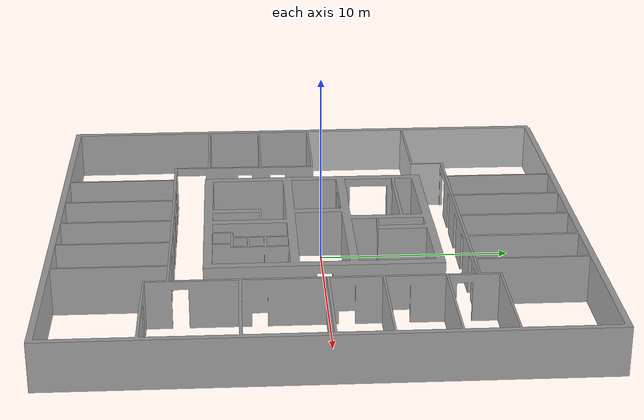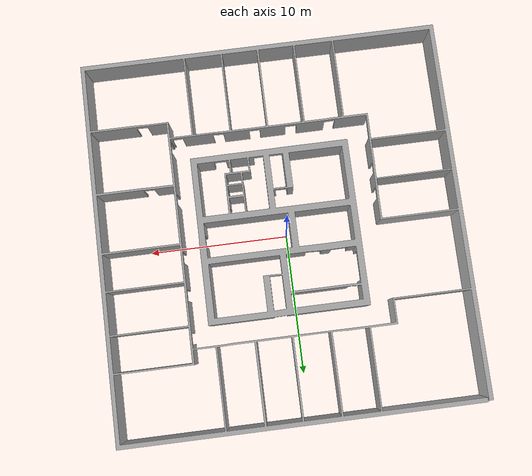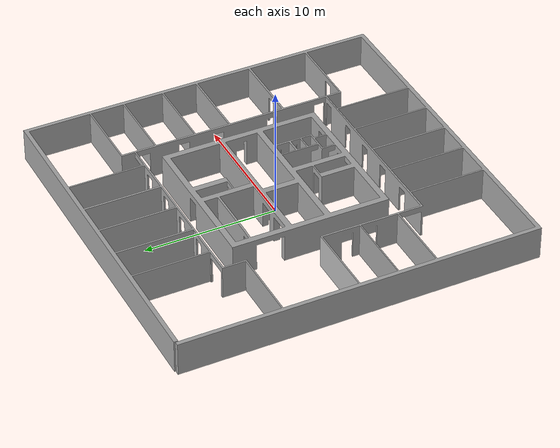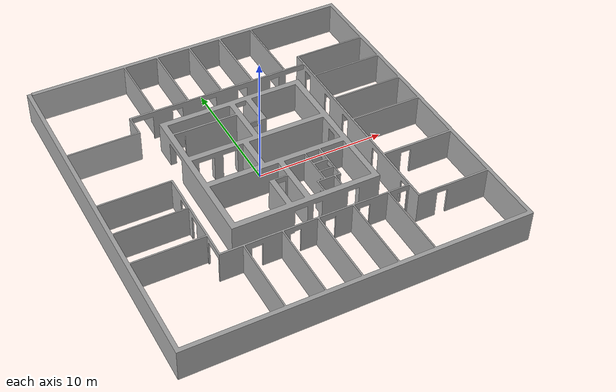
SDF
<?xml version="1.0"?>
<sdf version="1.4">
  <world name="default">
    <scene>
      <ambient>0.500000 0.500000 0.500000 1.000000</ambient>
      <background>0.500000 0.500000 0.500000 1.000000</background>
      <shadows>0</shadows>
    </scene>
    <physics type="ode">
      <gravity>0.000000 0.000000 -9.800000</gravity>
      <ode>
        <solver>
          <type>quick</type>
          <iters>200</iters>
          <sor>1.300000</sor>
        </solver>
        <constraints>
          <cfm>0.000000</cfm>
          <erp>0.200000</erp>
          <contact_max_correcting_vel>100.000000</contact_max_correcting_vel>
          <contact_surface_layer>0.001000</contact_surface_layer>
        </constraints>
      </ode>
      <real_time_update_rate>1000.000000</real_time_update_rate>
      <max_step_size>0.002000</max_step_size>
    </physics>
    <model name="7thmap">
      <pose>0 0 0  0 0 0</pose>
      <static>true</static>
      <link name="body">
        <collision name="collision">
          <geometry>
            <mesh><uri>file://models/7thmap.dae</uri></mesh>
          </geometry>
          <surface>
            <friction>
              <ode>
                <mu>100000000.000000</mu>
                <mu2>100000000.000000</mu2>
                <fdir1>0.000000 0.000000 0.000000</fdir1>
                <slip1>0.000000</slip1>
                <slip2>0.000000</slip2>
              </ode>
            </friction>
            <bounce>
              <restitution_coefficient>0.000000</restitution_coefficient>
              <threshold>1000000.000000</threshold>
            </bounce>
            <contact>
              <ode>
                <soft_cfm>0.000000</soft_cfm>
                <soft_erp>0.200000</soft_erp>
                <kp>10000000000.000000</kp>
                <kd>1.000000</kd>
                <max_vel>100.000000</max_vel>
                <min_depth>0.000100</min_depth>
              </ode>
            </contact>
          </surface>
        </collision>
        <visual name="visual">
          <geometry>
            <mesh><uri>file://models/7thmap.dae</uri></mesh>
          </geometry>
          <material>
            <script>
              <name>__default__</name>
            </script>
          </material>
          <cast_shadows>0</cast_shadows>
        </visual>
        <velocity_decay>
          <linear>0.000000</linear>
          <angular>0.000000</angular>
        </velocity_decay>
        <self_collide>0</self_collide>
        <kinematic>0</kinematic>
      </link>
      <static>1</static>
    </model>
    <light name="my_light_01" type="directional">
      <pose>0.000000 0.000000 30.000000 0.000000 -0.000000 0.000000</pose>
      <diffuse>0.900000 0.900000 0.900000 1.000000</diffuse>
      <specular>0.600000 0.600000 0.600000 1.000000</specular>
      <attenuation>
        <range>20.000000</range>
      </attenuation>
      <direction>0.000000 0.000000 -1.000000</direction>
      <cast_shadows>0</cast_shadows>
    </light>
    <light name='user_point_light_0' type='point'>
      <pose frame=''>9 -10 1.50 0 -0 0</pose>
      <diffuse>0.5 0.5 0.5 1</diffuse>
      <specular>0.1 0.1 0.1 1</specular>
      <attenuation>
        <range>20</range>
        <constant>0</constant>
        <linear>0.01</linear>
        <quadratic>0.001</quadratic>
      </attenuation>
      <cast_shadows>0</cast_shadows>
      <direction>0 0 -1</direction>
    </light>
    <light name='user_point_light_1' type='point'>
      <pose frame=''>-9 -10 1.50 0 -0 0</pose>
      <diffuse>0.5 0.5 0.5 1</diffuse>
      <specular>0.1 0.1 0.1 1</specular>
      <attenuation>
        <range>20</range>
        <constant>0</constant>
        <linear>0.01</linear>
        <quadratic>0.001</quadratic>
      </attenuation>
      <cast_shadows>0</cast_shadows>
      <direction>0 0 -1</direction>
    </light>
    <light name='user_point_light_2' type='point'>
      <pose frame=''>-9 10 1.50 0 -0 0</pose>
      <diffuse>0.5 0.5 0.5 1</diffuse>
      <specular>0.1 0.1 0.1 1</specular>
      <attenuation>
        <range>20</range>
        <constant>0</constant>
        <linear>0.01</linear>
        <quadratic>0.001</quadratic>
      </attenuation>
      <cast_shadows>0</cast_shadows>
      <direction>0 0 -1</direction>
    </light>
    <light name='user_point_light_3' type='point'>
      <pose frame=''>9 10 1.50 0 -0 0</pose>
      <diffuse>0.5 0.5 0.5 1</diffuse>
      <specular>0.1 0.1 0.1 1</specular>
      <attenuation>
        <range>20</range>
        <constant>0</constant>
        <linear>0.01</linear>
        <quadratic>0.001</quadratic>
      </attenuation>
      <cast_shadows>0</cast_shadows>
      <direction>0 0 -1</direction>
    </light>
  </world>
</sdf>
